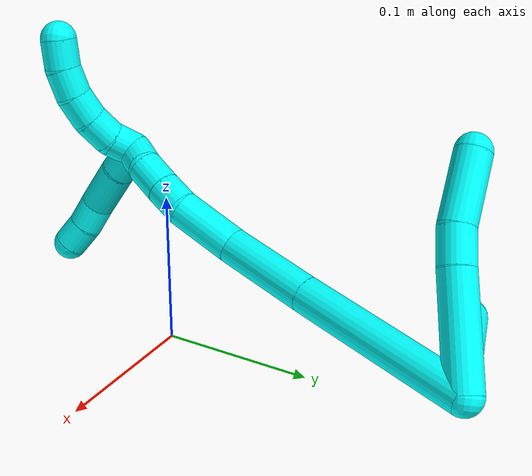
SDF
<sdf version="1.7">
 <world name="default">
  <model name="3">
   <static>0</static>
   <link name="3">
    <collision name="collision-cylinder-e_1_2_8">
     <pose>-0.002359 -0.006994 0.03683 0.187661 -0.062839 -0.005916</pose>
     <geometry><cylinder><radius>0.0125</radius><length>0.075125</length></cylinder></geometry>
     <surface>
      <friction><ode><mu>1.16</mu><mu2>1.16</mu2><slip1>0</slip1><slip2>0</slip2></ode></friction>
      <contact><ode><kp>1e+06</kp><kd>1</kd><max_vel>0</max_vel><min_depth>0.001</min_depth></ode></contact>
     </surface>
    </collision>
    <visual name="visual-cylinder-e_1_2_8">
     <pose>-0.002359 -0.006994 0.03683 0.187661 -0.062839 -0.005916</pose>
     <geometry><cylinder><radius>0.0125</radius><length>0.075125</length></cylinder></geometry>
     <material><ambient>0.003922 1 0.996078 1</ambient></material>
    </visual>
    <collision name="collision-cylinder-e_2_8_9">
     <pose>-0.006429 -0.015941 0.086239 0.154032 -0.133664 -0.01033</pose>
     <geometry><cylinder><radius>0.0125</radius><length>0.025687</length></cylinder></geometry>
     <surface>
      <friction><ode><mu>1.16</mu><mu2>1.16</mu2><slip1>0</slip1><slip2>0</slip2></ode></friction>
      <contact><ode><kp>1e+06</kp><kd>1</kd><max_vel>0</max_vel><min_depth>0.001</min_depth></ode></contact>
     </surface>
    </collision>
    <visual name="visual-cylinder-e_2_8_9">
     <pose>-0.006429 -0.015941 0.086239 0.154032 -0.133664 -0.01033</pose>
     <geometry><cylinder><radius>0.0125</radius><length>0.025687</length></cylinder></geometry>
     <material><ambient>0.003922 1 0.996078 1</ambient></material>
    </visual>
    <collision name="collision-cylinder-e_3_9_6">
     <pose>-0.013452 -0.016832 0.122807 -0.044232 -0.217687 0.004834</pose>
     <geometry><cylinder><radius>0.0125</radius><length>0.049187</length></cylinder></geometry>
     <surface>
      <friction><ode><mu>1.16</mu><mu2>1.16</mu2><slip1>0</slip1><slip2>0</slip2></ode></friction>
      <contact><ode><kp>1e+06</kp><kd>1</kd><max_vel>0</max_vel><min_depth>0.001</min_depth></ode></contact>
     </surface>
    </collision>
    <visual name="visual-cylinder-e_3_9_6">
     <pose>-0.013452 -0.016832 0.122807 -0.044232 -0.217687 0.004834</pose>
     <geometry><cylinder><radius>0.0125</radius><length>0.049187</length></cylinder></geometry>
     <material><ambient>0.003922 1 0.996078 1</ambient></material>
    </visual>
    <collision name="collision-cylinder-e_1_2_10">
     <pose>-0.009446 -0.004486 0.004191 0.819356 -0.994428 -0.462879</pose>
     <geometry><cylinder><radius>0.0125</radius><length>0.022531</length></cylinder></geometry>
     <surface>
      <friction><ode><mu>1.16</mu><mu2>1.16</mu2><slip1>0</slip1><slip2>0</slip2></ode></friction>
      <contact><ode><kp>1e+06</kp><kd>1</kd><max_vel>0</max_vel><min_depth>0.001</min_depth></ode></contact>
     </surface>
    </collision>
    <visual name="visual-cylinder-e_1_2_10">
     <pose>-0.009446 -0.004486 0.004191 0.819356 -0.994428 -0.462879</pose>
     <geometry><cylinder><radius>0.0125</radius><length>0.022531</length></cylinder></geometry>
     <material><ambient>0.003922 1 0.996078 1</ambient></material>
    </visual>
    <collision name="collision-cylinder-e_2_10_11">
     <pose>-0.028356 -0.011519 0.015796 0.330835 -0.879101 -0.156683</pose>
     <geometry><cylinder><radius>0.0125</radius><length>0.024578</length></cylinder></geometry>
     <surface>
      <friction><ode><mu>1.16</mu><mu2>1.16</mu2><slip1>0</slip1><slip2>0</slip2></ode></friction>
      <contact><ode><kp>1e+06</kp><kd>1</kd><max_vel>0</max_vel><min_depth>0.001</min_depth></ode></contact>
     </surface>
    </collision>
    <visual name="visual-cylinder-e_2_10_11">
     <pose>-0.028356 -0.011519 0.015796 0.330835 -0.879101 -0.156683</pose>
     <geometry><cylinder><radius>0.0125</radius><length>0.024578</length></cylinder></geometry>
     <material><ambient>0.003922 1 0.996078 1</ambient></material>
    </visual>
    <collision name="collision-cylinder-e_3_11_5">
     <pose>-0.06066 -0.01993 0.035181 0.455529 -1.04246 -0.264627</pose>
     <geometry><cylinder><radius>0.0125</radius><length>0.052891</length></cylinder></geometry>
     <surface>
      <friction><ode><mu>1.16</mu><mu2>1.16</mu2><slip1>0</slip1><slip2>0</slip2></ode></friction>
      <contact><ode><kp>1e+06</kp><kd>1</kd><max_vel>0</max_vel><min_depth>0.001</min_depth></ode></contact>
     </surface>
    </collision>
    <visual name="visual-cylinder-e_3_11_5">
     <pose>-0.06066 -0.01993 0.035181 0.455529 -1.04246 -0.264627</pose>
     <geometry><cylinder><radius>0.0125</radius><length>0.052891</length></cylinder></geometry>
     <material><ambient>0.003922 1 0.996078 1</ambient></material>
    </visual>
    <collision name="collision-cylinder-e_1_2_12">
     <pose>-0.006801 -0.056956 0.023946 1.1728 -0.109631 -0.072875</pose>
     <geometry><cylinder><radius>0.0125</radius><length>0.124317</length></cylinder></geometry>
     <surface>
      <friction><ode><mu>1.16</mu><mu2>1.16</mu2><slip1>0</slip1><slip2>0</slip2></ode></friction>
      <contact><ode><kp>1e+06</kp><kd>1</kd><max_vel>0</max_vel><min_depth>0.001</min_depth></ode></contact>
     </surface>
    </collision>
    <visual name="visual-cylinder-e_1_2_12">
     <pose>-0.006801 -0.056956 0.023946 1.1728 -0.109631 -0.072875</pose>
     <geometry><cylinder><radius>0.0125</radius><length>0.124317</length></cylinder></geometry>
     <material><ambient>0.003922 1 0.996078 1</ambient></material>
    </visual>
    <collision name="collision-cylinder-e_2_12_13">
     <pose>-0.015911 -0.143784 0.061336 1.14789 -0.070382 -0.045516</pose>
     <geometry><cylinder><radius>0.0125</radius><length>0.065678</length></cylinder></geometry>
     <surface>
      <friction><ode><mu>1.16</mu><mu2>1.16</mu2><slip1>0</slip1><slip2>0</slip2></ode></friction>
      <contact><ode><kp>1e+06</kp><kd>1</kd><max_vel>0</max_vel><min_depth>0.001</min_depth></ode></contact>
     </surface>
    </collision>
    <visual name="visual-cylinder-e_2_12_13">
     <pose>-0.015911 -0.143784 0.061336 1.14789 -0.070382 -0.045516</pose>
     <geometry><cylinder><radius>0.0125</radius><length>0.065678</length></cylinder></geometry>
     <material><ambient>0.003922 1 0.996078 1</ambient></material>
    </visual>
    <collision name="collision-cylinder-e_3_13_14">
     <pose>-0.013226 -0.192155 0.085511 1.04517 0.229402 0.132524</pose>
     <geometry><cylinder><radius>0.0125</radius><length>0.043923</length></cylinder></geometry>
     <surface>
      <friction><ode><mu>1.16</mu><mu2>1.16</mu2><slip1>0</slip1><slip2>0</slip2></ode></friction>
      <contact><ode><kp>1e+06</kp><kd>1</kd><max_vel>0</max_vel><min_depth>0.001</min_depth></ode></contact>
     </surface>
    </collision>
    <visual name="visual-cylinder-e_3_13_14">
     <pose>-0.013226 -0.192155 0.085511 1.04517 0.229402 0.132524</pose>
     <geometry><cylinder><radius>0.0125</radius><length>0.043923</length></cylinder></geometry>
     <material><ambient>0.003922 1 0.996078 1</ambient></material>
    </visual>
    <collision name="collision-cylinder-e_4_14_15">
     <pose>-0.008383 -0.219154 0.102493 0.936667 -0.014233 -0.0072</pose>
     <geometry><cylinder><radius>0.0125</radius><length>0.021106</length></cylinder></geometry>
     <surface>
      <friction><ode><mu>1.16</mu><mu2>1.16</mu2><slip1>0</slip1><slip2>0</slip2></ode></friction>
      <contact><ode><kp>1e+06</kp><kd>1</kd><max_vel>0</max_vel><min_depth>0.001</min_depth></ode></contact>
     </surface>
    </collision>
    <visual name="visual-cylinder-e_4_14_15">
     <pose>-0.008383 -0.219154 0.102493 0.936667 -0.014233 -0.0072</pose>
     <geometry><cylinder><radius>0.0125</radius><length>0.021106</length></cylinder></geometry>
     <material><ambient>0.003922 1 0.996078 1</ambient></material>
    </visual>
    <collision name="collision-cylinder-e_5_15_16">
     <pose>-0.009067 -0.236853 0.11587 0.911761 -0.045856 -0.022487</pose>
     <geometry><cylinder><radius>0.0125</radius><length>0.023295</length></cylinder></geometry>
     <surface>
      <friction><ode><mu>1.16</mu><mu2>1.16</mu2><slip1>0</slip1><slip2>0</slip2></ode></friction>
      <contact><ode><kp>1e+06</kp><kd>1</kd><max_vel>0</max_vel><min_depth>0.001</min_depth></ode></contact>
     </surface>
    </collision>
    <visual name="visual-cylinder-e_5_15_16">
     <pose>-0.009067 -0.236853 0.11587 0.911761 -0.045856 -0.022487</pose>
     <geometry><cylinder><radius>0.0125</radius><length>0.023295</length></cylinder></geometry>
     <material><ambient>0.003922 1 0.996078 1</ambient></material>
    </visual>
    <collision name="collision-cylinder-e_6_16_1">
     <pose>-0.013215 -0.254064 0.129341 0.900893 -0.339885 -0.165592</pose>
     <geometry><cylinder><radius>0.0125</radius><length>0.021682</length></cylinder></geometry>
     <surface>
      <friction><ode><mu>1.16</mu><mu2>1.16</mu2><slip1>0</slip1><slip2>0</slip2></ode></friction>
      <contact><ode><kp>1e+06</kp><kd>1</kd><max_vel>0</max_vel><min_depth>0.001</min_depth></ode></contact>
     </surface>
    </collision>
    <visual name="visual-cylinder-e_6_16_1">
     <pose>-0.013215 -0.254064 0.129341 0.900893 -0.339885 -0.165592</pose>
     <geometry><cylinder><radius>0.0125</radius><length>0.021682</length></cylinder></geometry>
     <material><ambient>0.003922 1 0.996078 1</ambient></material>
    </visual>
    <collision name="collision-cylinder-e_1_1_17">
     <pose>-0.008785 -0.267454 0.138209 1.13232 0.934734 0.620754</pose>
     <geometry><cylinder><radius>0.0125</radius><length>0.02</length></cylinder></geometry>
     <surface>
      <friction><ode><mu>1.16</mu><mu2>1.16</mu2><slip1>0</slip1><slip2>0</slip2></ode></friction>
      <contact><ode><kp>1e+06</kp><kd>1</kd><max_vel>0</max_vel><min_depth>0.001</min_depth></ode></contact>
     </surface>
    </collision>
    <visual name="visual-cylinder-e_1_1_17">
     <pose>-0.008785 -0.267454 0.138209 1.13232 0.934734 0.620754</pose>
     <geometry><cylinder><radius>0.0125</radius><length>0.02</length></cylinder></geometry>
     <material><ambient>0.003922 1 0.996078 1</ambient></material>
    </visual>
    <collision name="collision-cylinder-e_2_17_18">
     <pose>0.006448 -0.277421 0.145953 0.720878 0.802168 0.316987</pose>
     <geometry><cylinder><radius>0.0125</radius><length>0.02</length></cylinder></geometry>
     <surface>
      <friction><ode><mu>1.16</mu><mu2>1.16</mu2><slip1>0</slip1><slip2>0</slip2></ode></friction>
      <contact><ode><kp>1e+06</kp><kd>1</kd><max_vel>0</max_vel><min_depth>0.001</min_depth></ode></contact>
     </surface>
    </collision>
    <visual name="visual-cylinder-e_2_17_18">
     <pose>0.006448 -0.277421 0.145953 0.720878 0.802168 0.316987</pose>
     <geometry><cylinder><radius>0.0125</radius><length>0.02</length></cylinder></geometry>
     <material><ambient>0.003922 1 0.996078 1</ambient></material>
    </visual>
    <collision name="collision-cylinder-e_3_18_19">
     <pose>0.020128 -0.285363 0.158003 0.456536 0.70645 0.170888</pose>
     <geometry><cylinder><radius>0.0125</radius><length>0.02</length></cylinder></geometry>
     <surface>
      <friction><ode><mu>1.16</mu><mu2>1.16</mu2><slip1>0</slip1><slip2>0</slip2></ode></friction>
      <contact><ode><kp>1e+06</kp><kd>1</kd><max_vel>0</max_vel><min_depth>0.001</min_depth></ode></contact>
     </surface>
    </collision>
    <visual name="visual-cylinder-e_3_18_19">
     <pose>0.020128 -0.285363 0.158003 0.456536 0.70645 0.170888</pose>
     <geometry><cylinder><radius>0.0125</radius><length>0.02</length></cylinder></geometry>
     <material><ambient>0.003922 1 0.996078 1</ambient></material>
    </visual>
    <collision name="collision-cylinder-e_4_19_20">
     <pose>0.031993 -0.290742 0.173017 0.242583 0.567292 0.071033</pose>
     <geometry><cylinder><radius>0.0125</radius><length>0.02</length></cylinder></geometry>
     <surface>
      <friction><ode><mu>1.16</mu><mu2>1.16</mu2><slip1>0</slip1><slip2>0</slip2></ode></friction>
      <contact><ode><kp>1e+06</kp><kd>1</kd><max_vel>0</max_vel><min_depth>0.001</min_depth></ode></contact>
     </surface>
    </collision>
    <visual name="visual-cylinder-e_4_19_20">
     <pose>0.031993 -0.290742 0.173017 0.242583 0.567292 0.071033</pose>
     <geometry><cylinder><radius>0.0125</radius><length>0.02</length></cylinder></geometry>
     <material><ambient>0.003922 1 0.996078 1</ambient></material>
    </visual>
    <collision name="collision-cylinder-e_5_20_4">
     <pose>0.041439 -0.29322 0.190326 0.049601 0.419425 0.010559</pose>
     <geometry><cylinder><radius>0.0125</radius><length>0.02</length></cylinder></geometry>
     <surface>
      <friction><ode><mu>1.16</mu><mu2>1.16</mu2><slip1>0</slip1><slip2>0</slip2></ode></friction>
      <contact><ode><kp>1e+06</kp><kd>1</kd><max_vel>0</max_vel><min_depth>0.001</min_depth></ode></contact>
     </surface>
    </collision>
    <visual name="visual-cylinder-e_5_20_4">
     <pose>0.041439 -0.29322 0.190326 0.049601 0.419425 0.010559</pose>
     <geometry><cylinder><radius>0.0125</radius><length>0.02</length></cylinder></geometry>
     <material><ambient>0.003922 1 0.996078 1</ambient></material>
    </visual>
    <collision name="collision-cylinder-e_1_1_21">
     <pose>-0.020133 -0.269963 0.128336 2.32101 -0.297374 -0.663295</pose>
     <geometry><cylinder><radius>0.0125</radius><length>0.022553</length></cylinder></geometry>
     <surface>
      <friction><ode><mu>1.16</mu><mu2>1.16</mu2><slip1>0</slip1><slip2>0</slip2></ode></friction>
      <contact><ode><kp>1e+06</kp><kd>1</kd><max_vel>0</max_vel><min_depth>0.001</min_depth></ode></contact>
     </surface>
    </collision>
    <visual name="visual-cylinder-e_1_1_21">
     <pose>-0.020133 -0.269963 0.128336 2.32101 -0.297374 -0.663295</pose>
     <geometry><cylinder><radius>0.0125</radius><length>0.022553</length></cylinder></geometry>
     <material><ambient>0.003922 1 0.996078 1</ambient></material>
    </visual>
    <collision name="collision-cylinder-e_2_21_22">
     <pose>-0.031051 -0.29017 0.109414 2.3249 -0.423245 -0.921766</pose>
     <geometry><cylinder><radius>0.0125</radius><length>0.037074</length></cylinder></geometry>
     <surface>
      <friction><ode><mu>1.16</mu><mu2>1.16</mu2><slip1>0</slip1><slip2>0</slip2></ode></friction>
      <contact><ode><kp>1e+06</kp><kd>1</kd><max_vel>0</max_vel><min_depth>0.001</min_depth></ode></contact>
     </surface>
    </collision>
    <visual name="visual-cylinder-e_2_21_22">
     <pose>-0.031051 -0.29017 0.109414 2.3249 -0.423245 -0.921766</pose>
     <geometry><cylinder><radius>0.0125</radius><length>0.037074</length></cylinder></geometry>
     <material><ambient>0.003922 1 0.996078 1</ambient></material>
    </visual>
    <collision name="collision-cylinder-e_3_22_23">
     <pose>-0.040585 -0.308076 0.08958 2.54705 -0.1902 -0.60371</pose>
     <geometry><cylinder><radius>0.0125</radius><length>0.020315</length></cylinder></geometry>
     <surface>
      <friction><ode><mu>1.16</mu><mu2>1.16</mu2><slip1>0</slip1><slip2>0</slip2></ode></friction>
      <contact><ode><kp>1e+06</kp><kd>1</kd><max_vel>0</max_vel><min_depth>0.001</min_depth></ode></contact>
     </surface>
    </collision>
    <visual name="visual-cylinder-e_3_22_23">
     <pose>-0.040585 -0.308076 0.08958 2.54705 -0.1902 -0.60371</pose>
     <geometry><cylinder><radius>0.0125</radius><length>0.020315</length></cylinder></geometry>
     <material><ambient>0.003922 1 0.996078 1</ambient></material>
    </visual>
    <collision name="collision-cylinder-e_4_23_3">
     <pose>-0.043889 -0.320337 0.07396 2.40482 -0.138388 -0.355296</pose>
     <geometry><cylinder><radius>0.0125</radius><length>0.020058</length></cylinder></geometry>
     <surface>
      <friction><ode><mu>1.16</mu><mu2>1.16</mu2><slip1>0</slip1><slip2>0</slip2></ode></friction>
      <contact><ode><kp>1e+06</kp><kd>1</kd><max_vel>0</max_vel><min_depth>0.001</min_depth></ode></contact>
     </surface>
    </collision>
    <visual name="visual-cylinder-e_4_23_3">
     <pose>-0.043889 -0.320337 0.07396 2.40482 -0.138388 -0.355296</pose>
     <geometry><cylinder><radius>0.0125</radius><length>0.020058</length></cylinder></geometry>
     <material><ambient>0.003922 1 0.996078 1</ambient></material>
    </visual>
    <collision name="collision-sphere-3">
     <pose>-0.045272 -0.32701 0.066603 0 -0 0</pose>
     <geometry><sphere><radius>0.0125</radius></sphere></geometry>
     <surface>
      <friction><ode><mu>1.16</mu><mu2>1.16</mu2><slip1>0</slip1><slip2>0</slip2></ode></friction>
      <contact><ode><kp>1e+06</kp><kd>1</kd><max_vel>0</max_vel><min_depth>0.001</min_depth></ode></contact>
     </surface>
    </collision>
    <visual name="visual-sphere-3">
     <pose>-0.045272 -0.32701 0.066603 0 -0 0</pose>
     <geometry><sphere><radius>0.0125</radius></sphere></geometry>
     <material><ambient>0.003922 1 0.996078 1</ambient></material>
    </visual>
    <collision name="collision-sphere-23">
     <pose>-0.042505 -0.313663 0.081317 0 -0 0</pose>
     <geometry><sphere><radius>0.0125</radius></sphere></geometry>
     <surface>
      <friction><ode><mu>1.16</mu><mu2>1.16</mu2><slip1>0</slip1><slip2>0</slip2></ode></friction>
      <contact><ode><kp>1e+06</kp><kd>1</kd><max_vel>0</max_vel><min_depth>0.001</min_depth></ode></contact>
     </surface>
    </collision>
    <visual name="visual-sphere-23">
     <pose>-0.042505 -0.313663 0.081317 0 -0 0</pose>
     <geometry><sphere><radius>0.0125</radius></sphere></geometry>
     <material><ambient>0.003922 1 0.996078 1</ambient></material>
    </visual>
    <collision name="collision-sphere-22">
     <pose>-0.038665 -0.302489 0.097842 0 -0 0</pose>
     <geometry><sphere><radius>0.0125</radius></sphere></geometry>
     <surface>
      <friction><ode><mu>1.16</mu><mu2>1.16</mu2><slip1>0</slip1><slip2>0</slip2></ode></friction>
      <contact><ode><kp>1e+06</kp><kd>1</kd><max_vel>0</max_vel><min_depth>0.001</min_depth></ode></contact>
     </surface>
    </collision>
    <visual name="visual-sphere-22">
     <pose>-0.038665 -0.302489 0.097842 0 -0 0</pose>
     <geometry><sphere><radius>0.0125</radius></sphere></geometry>
     <material><ambient>0.003922 1 0.996078 1</ambient></material>
    </visual>
    <collision name="collision-sphere-21">
     <pose>-0.023437 -0.277851 0.120985 0 -0 0</pose>
     <geometry><sphere><radius>0.0125</radius></sphere></geometry>
     <surface>
      <friction><ode><mu>1.16</mu><mu2>1.16</mu2><slip1>0</slip1><slip2>0</slip2></ode></friction>
      <contact><ode><kp>1e+06</kp><kd>1</kd><max_vel>0</max_vel><min_depth>0.001</min_depth></ode></contact>
     </surface>
    </collision>
    <visual name="visual-sphere-21">
     <pose>-0.023437 -0.277851 0.120985 0 -0 0</pose>
     <geometry><sphere><radius>0.0125</radius></sphere></geometry>
     <material><ambient>0.003922 1 0.996078 1</ambient></material>
    </visual>
    <collision name="collision-sphere-4">
     <pose>0.045512 -0.293673 0.199448 0 -0 0</pose>
     <geometry><sphere><radius>0.0125</radius></sphere></geometry>
     <surface>
      <friction><ode><mu>1.16</mu><mu2>1.16</mu2><slip1>0</slip1><slip2>0</slip2></ode></friction>
      <contact><ode><kp>1e+06</kp><kd>1</kd><max_vel>0</max_vel><min_depth>0.001</min_depth></ode></contact>
     </surface>
    </collision>
    <visual name="visual-sphere-4">
     <pose>0.045512 -0.293673 0.199448 0 -0 0</pose>
     <geometry><sphere><radius>0.0125</radius></sphere></geometry>
     <material><ambient>0.003922 1 0.996078 1</ambient></material>
    </visual>
    <collision name="collision-sphere-20">
     <pose>0.037367 -0.292768 0.181204 0 -0 0</pose>
     <geometry><sphere><radius>0.0125</radius></sphere></geometry>
     <surface>
      <friction><ode><mu>1.16</mu><mu2>1.16</mu2><slip1>0</slip1><slip2>0</slip2></ode></friction>
      <contact><ode><kp>1e+06</kp><kd>1</kd><max_vel>0</max_vel><min_depth>0.001</min_depth></ode></contact>
     </surface>
    </collision>
    <visual name="visual-sphere-20">
     <pose>0.037367 -0.292768 0.181204 0 -0 0</pose>
     <geometry><sphere><radius>0.0125</radius></sphere></geometry>
     <material><ambient>0.003922 1 0.996078 1</ambient></material>
    </visual>
    <collision name="collision-sphere-11">
     <pose>-0.03782 -0.014065 0.02321 0 -0 0</pose>
     <geometry><sphere><radius>0.0125</radius></sphere></geometry>
     <surface>
      <friction><ode><mu>1.16</mu><mu2>1.16</mu2><slip1>0</slip1><slip2>0</slip2></ode></friction>
      <contact><ode><kp>1e+06</kp><kd>1</kd><max_vel>0</max_vel><min_depth>0.001</min_depth></ode></contact>
     </surface>
    </collision>
    <visual name="visual-sphere-11">
     <pose>-0.03782 -0.014065 0.02321 0 -0 0</pose>
     <geometry><sphere><radius>0.0125</radius></sphere></geometry>
     <material><ambient>0.003922 1 0.996078 1</ambient></material>
    </visual>
    <collision name="collision-sphere-10">
     <pose>-0.018891 -0.008972 0.008383 0 -0 0</pose>
     <geometry><sphere><radius>0.0125</radius></sphere></geometry>
     <surface>
      <friction><ode><mu>1.16</mu><mu2>1.16</mu2><slip1>0</slip1><slip2>0</slip2></ode></friction>
      <contact><ode><kp>1e+06</kp><kd>1</kd><max_vel>0</max_vel><min_depth>0.001</min_depth></ode></contact>
     </surface>
    </collision>
    <visual name="visual-sphere-10">
     <pose>-0.018891 -0.008972 0.008383 0 -0 0</pose>
     <geometry><sphere><radius>0.0125</radius></sphere></geometry>
     <material><ambient>0.003922 1 0.996078 1</ambient></material>
    </visual>
    <collision name="collision-sphere-6">
     <pose>-0.018764 -0.01577 0.146797 0 -0 0</pose>
     <geometry><sphere><radius>0.0125</radius></sphere></geometry>
     <surface>
      <friction><ode><mu>1.16</mu><mu2>1.16</mu2><slip1>0</slip1><slip2>0</slip2></ode></friction>
      <contact><ode><kp>1e+06</kp><kd>1</kd><max_vel>0</max_vel><min_depth>0.001</min_depth></ode></contact>
     </surface>
    </collision>
    <visual name="visual-sphere-6">
     <pose>-0.018764 -0.01577 0.146797 0 -0 0</pose>
     <geometry><sphere><radius>0.0125</radius></sphere></geometry>
     <material><ambient>0.003922 1 0.996078 1</ambient></material>
    </visual>
    <collision name="collision-sphere-9">
     <pose>-0.008141 -0.017894 0.098818 0 -0 0</pose>
     <geometry><sphere><radius>0.0125</radius></sphere></geometry>
     <surface>
      <friction><ode><mu>1.16</mu><mu2>1.16</mu2><slip1>0</slip1><slip2>0</slip2></ode></friction>
      <contact><ode><kp>1e+06</kp><kd>1</kd><max_vel>0</max_vel><min_depth>0.001</min_depth></ode></contact>
     </surface>
    </collision>
    <visual name="visual-sphere-9">
     <pose>-0.008141 -0.017894 0.098818 0 -0 0</pose>
     <geometry><sphere><radius>0.0125</radius></sphere></geometry>
     <material><ambient>0.003922 1 0.996078 1</ambient></material>
    </visual>
    <collision name="collision-sphere-2">
     <geometry><sphere><radius>0.0125</radius></sphere></geometry>
     <surface>
      <friction><ode><mu>1.16</mu><mu2>1.16</mu2><slip1>0</slip1><slip2>0</slip2></ode></friction>
      <contact><ode><kp>1e+06</kp><kd>1</kd><max_vel>0</max_vel><min_depth>0.001</min_depth></ode></contact>
     </surface>
    </collision>
    <visual name="visual-sphere-2">
     <geometry><sphere><radius>0.0125</radius></sphere></geometry>
     <material><ambient>0.003922 1 0.996078 1</ambient></material>
    </visual>
    <collision name="collision-sphere-19">
     <pose>0.02662 -0.288716 0.16483 0 -0 0</pose>
     <geometry><sphere><radius>0.0125</radius></sphere></geometry>
     <surface>
      <friction><ode><mu>1.16</mu><mu2>1.16</mu2><slip1>0</slip1><slip2>0</slip2></ode></friction>
      <contact><ode><kp>1e+06</kp><kd>1</kd><max_vel>0</max_vel><min_depth>0.001</min_depth></ode></contact>
     </surface>
    </collision>
    <visual name="visual-sphere-19">
     <pose>0.02662 -0.288716 0.16483 0 -0 0</pose>
     <geometry><sphere><radius>0.0125</radius></sphere></geometry>
     <material><ambient>0.003922 1 0.996078 1</ambient></material>
    </visual>
    <collision name="collision-sphere-8">
     <pose>-0.004718 -0.013988 0.073661 0 -0 0</pose>
     <geometry><sphere><radius>0.0125</radius></sphere></geometry>
     <surface>
      <friction><ode><mu>1.16</mu><mu2>1.16</mu2><slip1>0</slip1><slip2>0</slip2></ode></friction>
      <contact><ode><kp>1e+06</kp><kd>1</kd><max_vel>0</max_vel><min_depth>0.001</min_depth></ode></contact>
     </surface>
    </collision>
    <visual name="visual-sphere-8">
     <pose>-0.004718 -0.013988 0.073661 0 -0 0</pose>
     <geometry><sphere><radius>0.0125</radius></sphere></geometry>
     <material><ambient>0.003922 1 0.996078 1</ambient></material>
    </visual>
    <collision name="collision-sphere-5">
     <pose>-0.083499 -0.025794 0.047153 0 -0 0</pose>
     <geometry><sphere><radius>0.0125</radius></sphere></geometry>
     <surface>
      <friction><ode><mu>1.16</mu><mu2>1.16</mu2><slip1>0</slip1><slip2>0</slip2></ode></friction>
      <contact><ode><kp>1e+06</kp><kd>1</kd><max_vel>0</max_vel><min_depth>0.001</min_depth></ode></contact>
     </surface>
    </collision>
    <visual name="visual-sphere-5">
     <pose>-0.083499 -0.025794 0.047153 0 -0 0</pose>
     <geometry><sphere><radius>0.0125</radius></sphere></geometry>
     <material><ambient>0.003922 1 0.996078 1</ambient></material>
    </visual>
    <collision name="collision-sphere-12">
     <pose>-0.013602 -0.113912 0.047892 0 -0 0</pose>
     <geometry><sphere><radius>0.0125</radius></sphere></geometry>
     <surface>
      <friction><ode><mu>1.16</mu><mu2>1.16</mu2><slip1>0</slip1><slip2>0</slip2></ode></friction>
      <contact><ode><kp>1e+06</kp><kd>1</kd><max_vel>0</max_vel><min_depth>0.001</min_depth></ode></contact>
     </surface>
    </collision>
    <visual name="visual-sphere-12">
     <pose>-0.013602 -0.113912 0.047892 0 -0 0</pose>
     <geometry><sphere><radius>0.0125</radius></sphere></geometry>
     <material><ambient>0.003922 1 0.996078 1</ambient></material>
    </visual>
    <collision name="collision-sphere-13">
     <pose>-0.01822 -0.173656 0.07478 0 -0 0</pose>
     <geometry><sphere><radius>0.0125</radius></sphere></geometry>
     <surface>
      <friction><ode><mu>1.16</mu><mu2>1.16</mu2><slip1>0</slip1><slip2>0</slip2></ode></friction>
      <contact><ode><kp>1e+06</kp><kd>1</kd><max_vel>0</max_vel><min_depth>0.001</min_depth></ode></contact>
     </surface>
    </collision>
    <visual name="visual-sphere-13">
     <pose>-0.01822 -0.173656 0.07478 0 -0 0</pose>
     <geometry><sphere><radius>0.0125</radius></sphere></geometry>
     <material><ambient>0.003922 1 0.996078 1</ambient></material>
    </visual>
    <collision name="collision-sphere-14">
     <pose>-0.008232 -0.210654 0.096241 0 -0 0</pose>
     <geometry><sphere><radius>0.0125</radius></sphere></geometry>
     <surface>
      <friction><ode><mu>1.16</mu><mu2>1.16</mu2><slip1>0</slip1><slip2>0</slip2></ode></friction>
      <contact><ode><kp>1e+06</kp><kd>1</kd><max_vel>0</max_vel><min_depth>0.001</min_depth></ode></contact>
     </surface>
    </collision>
    <visual name="visual-sphere-14">
     <pose>-0.008232 -0.210654 0.096241 0 -0 0</pose>
     <geometry><sphere><radius>0.0125</radius></sphere></geometry>
     <material><ambient>0.003922 1 0.996078 1</ambient></material>
    </visual>
    <collision name="collision-sphere-15">
     <pose>-0.008533 -0.227655 0.108745 0 -0 0</pose>
     <geometry><sphere><radius>0.0125</radius></sphere></geometry>
     <surface>
      <friction><ode><mu>1.16</mu><mu2>1.16</mu2><slip1>0</slip1><slip2>0</slip2></ode></friction>
      <contact><ode><kp>1e+06</kp><kd>1</kd><max_vel>0</max_vel><min_depth>0.001</min_depth></ode></contact>
     </surface>
    </collision>
    <visual name="visual-sphere-15">
     <pose>-0.008533 -0.227655 0.108745 0 -0 0</pose>
     <geometry><sphere><radius>0.0125</radius></sphere></geometry>
     <material><ambient>0.003922 1 0.996078 1</ambient></material>
    </visual>
    <collision name="collision-sphere-16">
     <pose>-0.009601 -0.246052 0.122994 0 -0 0</pose>
     <geometry><sphere><radius>0.0125</radius></sphere></geometry>
     <surface>
      <friction><ode><mu>1.16</mu><mu2>1.16</mu2><slip1>0</slip1><slip2>0</slip2></ode></friction>
      <contact><ode><kp>1e+06</kp><kd>1</kd><max_vel>0</max_vel><min_depth>0.001</min_depth></ode></contact>
     </surface>
    </collision>
    <visual name="visual-sphere-16">
     <pose>-0.009601 -0.246052 0.122994 0 -0 0</pose>
     <geometry><sphere><radius>0.0125</radius></sphere></geometry>
     <material><ambient>0.003922 1 0.996078 1</ambient></material>
    </visual>
    <collision name="collision-sphere-1">
     <pose>-0.016829 -0.262076 0.135687 0 -0 0</pose>
     <geometry><sphere><radius>0.0125</radius></sphere></geometry>
     <surface>
      <friction><ode><mu>1.16</mu><mu2>1.16</mu2><slip1>0</slip1><slip2>0</slip2></ode></friction>
      <contact><ode><kp>1e+06</kp><kd>1</kd><max_vel>0</max_vel><min_depth>0.001</min_depth></ode></contact>
     </surface>
    </collision>
    <visual name="visual-sphere-1">
     <pose>-0.016829 -0.262076 0.135687 0 -0 0</pose>
     <geometry><sphere><radius>0.0125</radius></sphere></geometry>
     <material><ambient>0.003922 1 0.996078 1</ambient></material>
    </visual>
    <collision name="collision-sphere-18">
     <pose>0.013637 -0.282009 0.151175 0 -0 0</pose>
     <geometry><sphere><radius>0.0125</radius></sphere></geometry>
     <surface>
      <friction><ode><mu>1.16</mu><mu2>1.16</mu2><slip1>0</slip1><slip2>0</slip2></ode></friction>
      <contact><ode><kp>1e+06</kp><kd>1</kd><max_vel>0</max_vel><min_depth>0.001</min_depth></ode></contact>
     </surface>
    </collision>
    <visual name="visual-sphere-18">
     <pose>0.013637 -0.282009 0.151175 0 -0 0</pose>
     <geometry><sphere><radius>0.0125</radius></sphere></geometry>
     <material><ambient>0.003922 1 0.996078 1</ambient></material>
    </visual>
    <collision name="collision-sphere-17">
     <pose>-0.00074 -0.272833 0.140731 0 -0 0</pose>
     <geometry><sphere><radius>0.0125</radius></sphere></geometry>
     <surface>
      <friction><ode><mu>1.16</mu><mu2>1.16</mu2><slip1>0</slip1><slip2>0</slip2></ode></friction>
      <contact><ode><kp>1e+06</kp><kd>1</kd><max_vel>0</max_vel><min_depth>0.001</min_depth></ode></contact>
     </surface>
    </collision>
    <visual name="visual-sphere-17">
     <pose>-0.00074 -0.272833 0.140731 0 -0 0</pose>
     <geometry><sphere><radius>0.0125</radius></sphere></geometry>
     <material><ambient>0.003922 1 0.996078 1</ambient></material>
    </visual>
    <inertial>
     <pose>-0.013005 -0.135508 0.077544 0 -0 0</pose>
     <mass>0.75</mass>
     <inertia>
      <ixx>0.00025</ixx>
      <ixy>0</ixy>
      <ixz>0</ixz>
      <iyy>0.000104</iyy>
      <iyz>0</iyz>
      <izz>0.000271</izz>
     </inertia>
    </inertial>
   </link>
   <pose>-0.007628 0.199849 0.015395 0.138474 -0.509481 -0.006091</pose>
  </model>
 </world>
</sdf>
